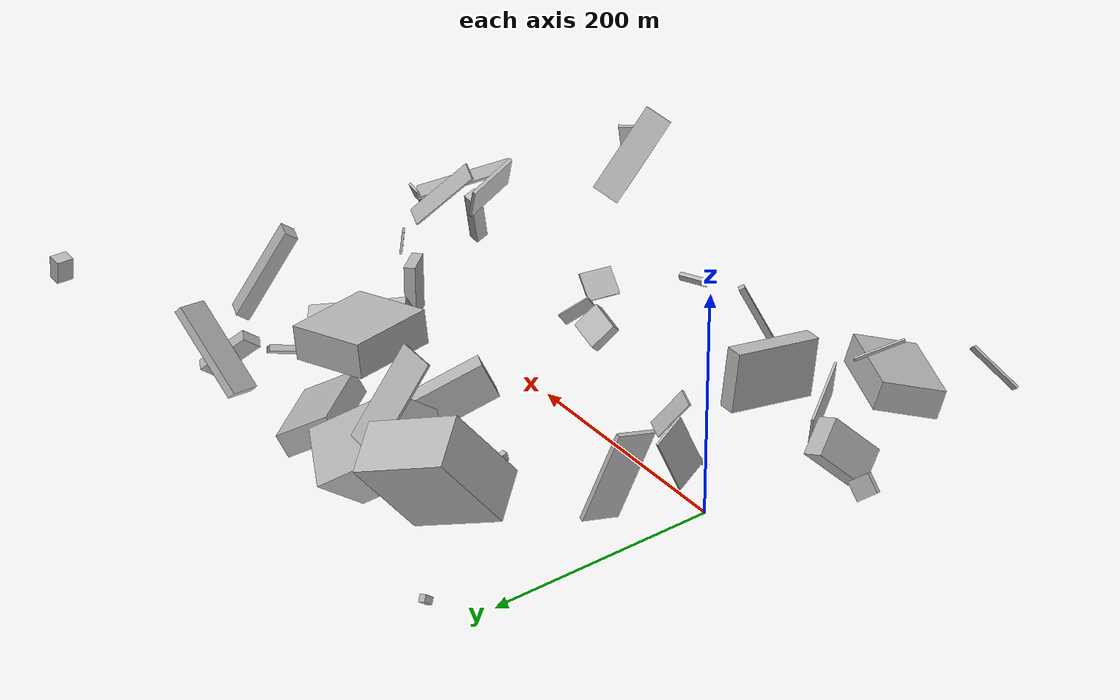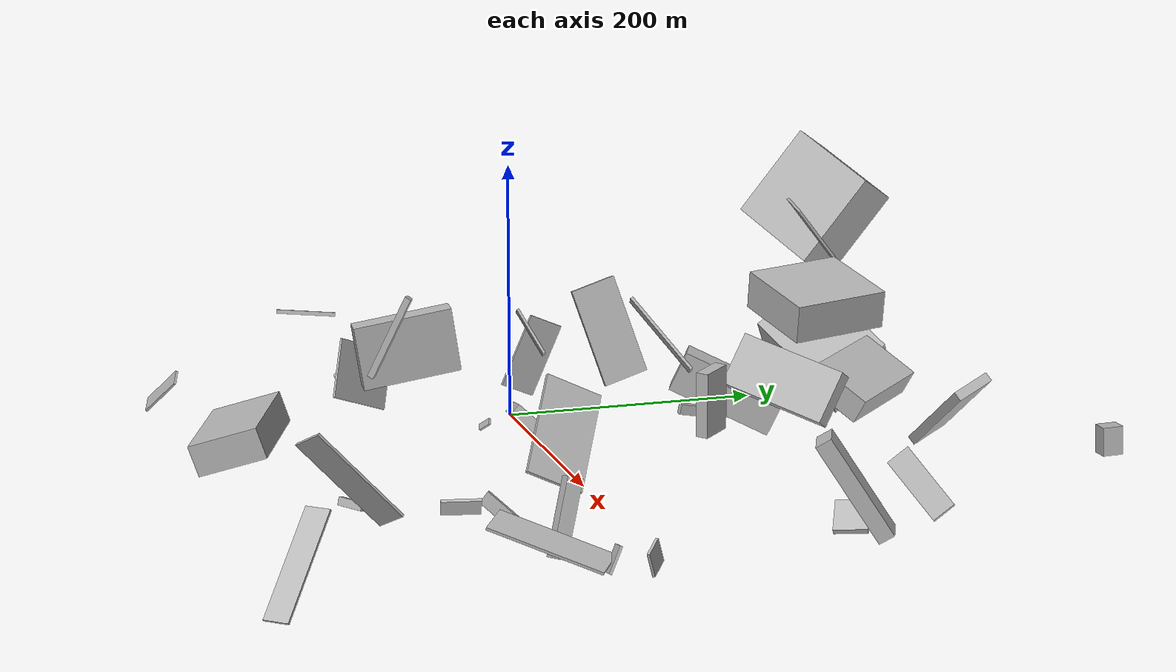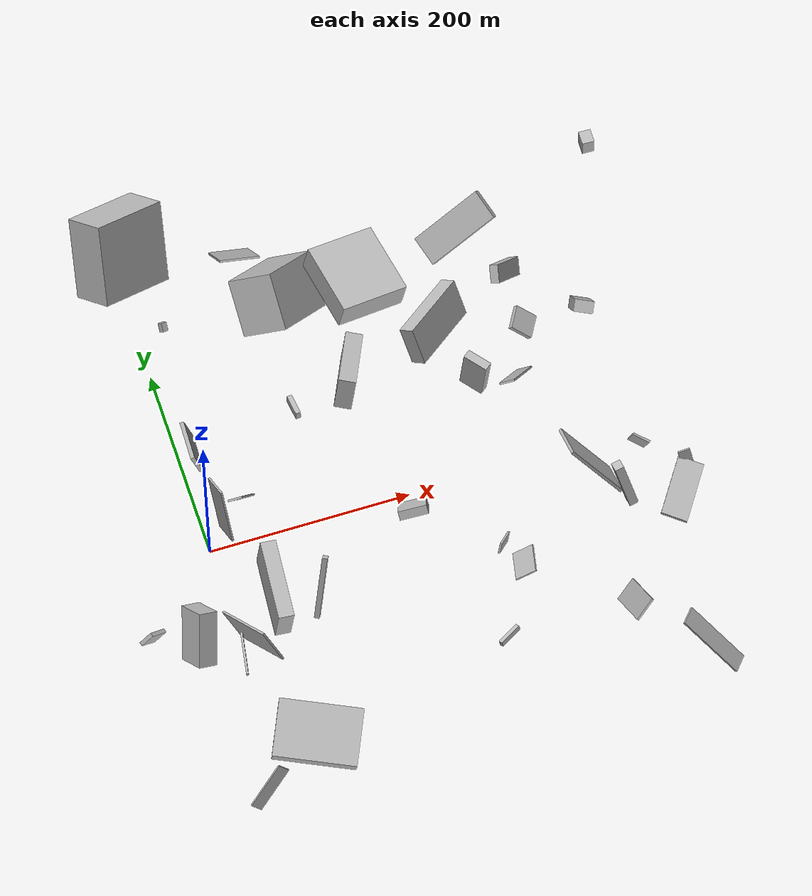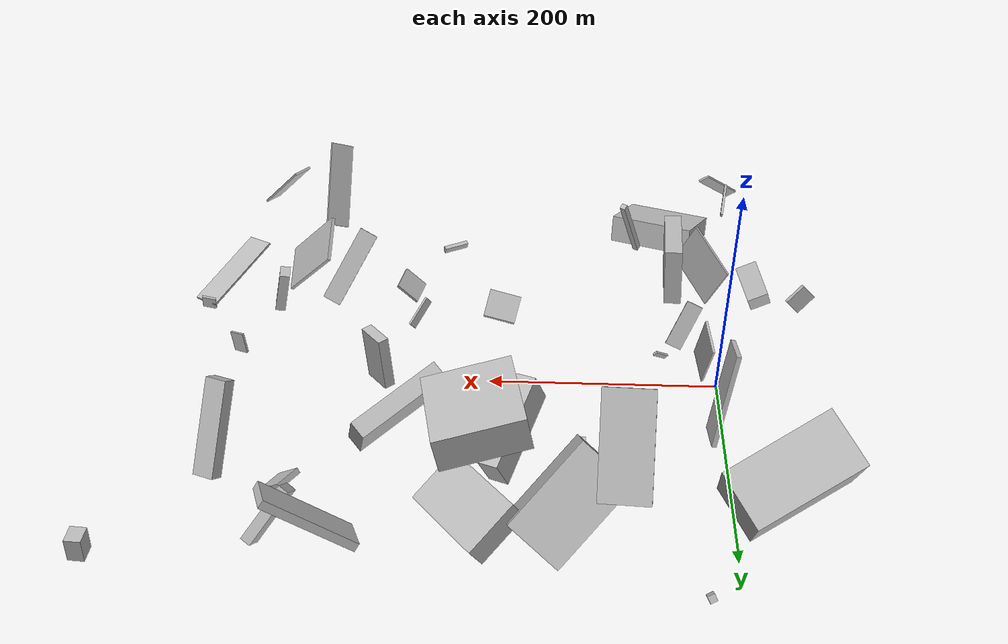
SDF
<sdf version="1.6">
 <world name="default">
  <scene>
   <sky><clouds><speed>12</speed></clouds></sky>
   <ambient>0.4 0.4 0.4 1</ambient>
   <background>0.7 0.7 0.7 1</background>
   <shadows>1</shadows>
  </scene>
  <gravity>0 0 -9.8066</gravity>
  <magnetic_field>6e-06 2.3e-05 -4.2e-05</magnetic_field>
  <physics default="0" name="default_physics" type="ode">
   <ode>
    <solver>
     <type>quick</type>
     <iters>10</iters>
     <sor>1.0</sor>
     <use_dynamic_moi_rescaling>0</use_dynamic_moi_rescaling>
    </solver>
    <constraints>
     <cfm>0</cfm>
     <erp>0.2</erp>
     <contact_max_correcting_vel>100</contact_max_correcting_vel>
     <contact_surface_layer>0.001</contact_surface_layer>
    </constraints>
   </ode>
   <max_step_size>0.004</max_step_size>
   <real_time_factor>1</real_time_factor>
   <real_time_update_rate>250</real_time_update_rate>
  </physics>
  <light name="sun" type="directional">
   <pose>0 0 10 0 0 0</pose>
   <diffuse>0.8 0.8 0.8 1</diffuse>
   <specular>0.2 0.2 0.2 1</specular>
   <attenuation>
    <range>1000</range>
    <constant>0.9</constant>
    <linear>0.01</linear>
    <quadratic>0.001</quadratic>
   </attenuation>
   <direction>-0.5 0.1 -0.9</direction>
  </light>
  <model name="building_1">
   <static>0</static>
   <pose>294.4453807189214 154.45991014234244 77.20308304561388 -1.1200591490920457 -1.020409278105367 1.8969526885437609</pose>
   <link name="link">
    <gravity>0</gravity>
    <pose>0 0 40.0 0 0 0</pose>
    <collision name="collision"><geometry><box><size>39 15 80</size></box></geometry></collision>
    <visual name="visual">
     <cast_shadows>0</cast_shadows>
     <geometry><box><size>39 15 80</size></box></geometry>
     <material>
      <script>
       <uri>model://HANNAS_wall/materials/scripts</uri>
       <uri>model://HANNAS_wall/materials/textures</uri>
       <name>vrc/HANNAS_wall</name>
      </script>
     </material>
    </visual>
   </link>
  </model>
  <model name="building_2">
   <static>0</static>
   <pose>-11.401880124403998 -159.5863640138179 90.38461801216162 -0.15950293910349927 0.08600053872945164 1.4010527220961295</pose>
   <link name="link">
    <gravity>0</gravity>
    <pose>0 0 1.5 0 0 0</pose>
    <collision name="collision"><geometry><box><size>45 2 3</size></box></geometry></collision>
    <visual name="visual">
     <cast_shadows>0</cast_shadows>
     <geometry><box><size>45 2 3</size></box></geometry>
     <material>
      <script>
       <uri>model://HANNAS_wall/materials/scripts</uri>
       <uri>model://HANNAS_wall/materials/textures</uri>
       <name>vrc/HANNAS_wall</name>
      </script>
     </material>
    </visual>
   </link>
  </model>
  <model name="building_3">
   <static>0</static>
   <pose>114.70099351908384 221.73372928154 142.72379098765032 1.4442625734164611 -0.9128960162092445 -1.5976103081515654</pose>
   <link name="link">
    <gravity>0</gravity>
    <pose>0 0 19.0 0 0 0</pose>
    <collision name="collision"><geometry><box><size>80 2 38</size></box></geometry></collision>
    <visual name="visual">
     <cast_shadows>0</cast_shadows>
     <geometry><box><size>80 2 38</size></box></geometry>
     <material>
      <script>
       <uri>model://HANNAS_wall/materials/scripts</uri>
       <uri>model://HANNAS_wall/materials/textures</uri>
       <name>vrc/HANNAS_wall</name>
      </script>
     </material>
    </visual>
   </link>
  </model>
  <model name="building_4">
   <static>0</static>
   <pose>424.22635695065145 -21.48473176961246 20.51723785798915 1.260410373988103 1.2270869016360613 2.1542366521095477</pose>
   <link name="link">
    <gravity>0</gravity>
    <pose>0 0 1.0 0 0 0</pose>
    <collision name="collision"><geometry><box><size>18 18 2</size></box></geometry></collision>
    <visual name="visual">
     <cast_shadows>0</cast_shadows>
     <geometry><box><size>18 18 2</size></box></geometry>
     <material>
      <script>
       <uri>model://HANNAS_wall/materials/scripts</uri>
       <uri>model://HANNAS_wall/materials/textures</uri>
       <name>vrc/HANNAS_wall</name>
      </script>
     </material>
    </visual>
   </link>
  </model>
  <model name="building_5">
   <static>0</static>
   <pose>171.9761827230846 113.14588795558419 42.15741549754327 -0.12134546416696623 -0.42938081543149353 -1.9652833209403975</pose>
   <link name="link">
    <gravity>0</gravity>
    <pose>0 0 16.0 0 0 0</pose>
    <collision name="collision"><geometry><box><size>80 17 32</size></box></geometry></collision>
    <visual name="visual">
     <cast_shadows>0</cast_shadows>
     <geometry><box><size>80 17 32</size></box></geometry>
     <material>
      <script>
       <uri>model://HANNAS_wall/materials/scripts</uri>
       <uri>model://HANNAS_wall/materials/textures</uri>
       <name>vrc/HANNAS_wall</name>
      </script>
     </material>
    </visual>
   </link>
  </model>
  <model name="building_6">
   <static>0</static>
   <pose>40.86290942051367 -54.883704738137816 77.98028878233062 -2.805572382942198 1.4039997030807687 1.8447870137020055</pose>
   <link name="link">
    <gravity>0</gravity>
    <pose>0 0 38.0 0 0 0</pose>
    <collision name="collision"><geometry><box><size>50 15 76</size></box></geometry></collision>
    <visual name="visual">
     <cast_shadows>0</cast_shadows>
     <geometry><box><size>50 15 76</size></box></geometry>
     <material>
      <script>
       <uri>model://HANNAS_wall/materials/scripts</uri>
       <uri>model://HANNAS_wall/materials/textures</uri>
       <name>vrc/HANNAS_wall</name>
      </script>
     </material>
    </visual>
   </link>
  </model>
  <model name="building_7">
   <static>0</static>
   <pose>-74.0572429427482 -84.46627359352725 26.420797041287727 0.31935658171534415 -0.831567579932505 0.03297080122207723</pose>
   <link name="link">
    <gravity>0</gravity>
    <pose>0 0 10.5 0 0 0</pose>
    <collision name="collision"><geometry><box><size>17 4 21</size></box></geometry></collision>
    <visual name="visual">
     <cast_shadows>0</cast_shadows>
     <geometry><box><size>17 4 21</size></box></geometry>
     <material>
      <script>
       <uri>model://HANNAS_wall/materials/scripts</uri>
       <uri>model://HANNAS_wall/materials/textures</uri>
       <name>vrc/HANNAS_wall</name>
      </script>
     </material>
    </visual>
   </link>
  </model>
  <model name="building_8">
   <static>0</static>
   <pose>412.3563673807903 -259.4368500369897 36.996466249222316 1.5619120361976266 0.7727949248807424 2.412552098723818</pose>
   <link name="link">
    <gravity>0</gravity>
    <pose>0 0 9.0 0 0 0</pose>
    <collision name="collision"><geometry><box><size>2 80 18</size></box></geometry></collision>
    <visual name="visual">
     <cast_shadows>0</cast_shadows>
     <geometry><box><size>2 80 18</size></box></geometry>
     <material>
      <script>
       <uri>model://HANNAS_wall/materials/scripts</uri>
       <uri>model://HANNAS_wall/materials/textures</uri>
       <name>vrc/HANNAS_wall</name>
      </script>
     </material>
    </visual>
   </link>
  </model>
  <model name="building_9">
   <static>0</static>
   <pose>-11.858347413983722 234.2158221421934 122.02548570001622 0.5309277082512971 -0.39405736108737116 -2.7350649088295</pose>
   <link name="link">
    <gravity>0</gravity>
    <pose>0 0 40.0 0 0 0</pose>
    <collision name="collision"><geometry><box><size>80 42 80</size></box></geometry></collision>
    <visual name="visual">
     <cast_shadows>0</cast_shadows>
     <geometry><box><size>80 42 80</size></box></geometry>
     <material>
      <script>
       <uri>model://HANNAS_wall/materials/scripts</uri>
       <uri>model://HANNAS_wall/materials/textures</uri>
       <name>vrc/HANNAS_wall</name>
      </script>
     </material>
    </visual>
   </link>
  </model>
  <model name="building_10">
   <static>0</static>
   <pose>-33.75129935737728 -83.3598108660143 55.72671610518738 2.4567848882110987 0.3979253088145151 0.12235387876201204</pose>
   <link name="link">
    <gravity>0</gravity>
    <pose>0 0 26.5 0 0 0</pose>
    <collision name="collision"><geometry><box><size>19 32 53</size></box></geometry></collision>
    <visual name="visual">
     <cast_shadows>0</cast_shadows>
     <geometry><box><size>19 32 53</size></box></geometry>
     <material>
      <script>
       <uri>model://HANNAS_wall/materials/scripts</uri>
       <uri>model://HANNAS_wall/materials/textures</uri>
       <name>vrc/HANNAS_wall</name>
      </script>
     </material>
    </visual>
   </link>
  </model>
  <model name="building_11">
   <static>0</static>
   <pose>17.450995279975718 13.212281870016644 51.873638426635026 1.5271647840788003 -0.4304544836010975 -1.3733088206336954</pose>
   <link name="link">
    <gravity>0</gravity>
    <pose>0 0 1.0 0 0 0</pose>
    <collision name="collision"><geometry><box><size>29 59 2</size></box></geometry></collision>
    <visual name="visual">
     <cast_shadows>0</cast_shadows>
     <geometry><box><size>29 59 2</size></box></geometry>
     <material>
      <script>
       <uri>model://HANNAS_wall/materials/scripts</uri>
       <uri>model://HANNAS_wall/materials/textures</uri>
       <name>vrc/HANNAS_wall</name>
      </script>
     </material>
    </visual>
   </link>
  </model>
  <model name="building_12">
   <static>0</static>
   <pose>358.2581469068101 186.5104527555825 25.788748957403634 0.5498327682503273 -0.7561119998443238 -2.479884100281518</pose>
   <link name="link">
    <gravity>0</gravity>
    <pose>0 0 9.0 0 0 0</pose>
    <collision name="collision"><geometry><box><size>51 9 18</size></box></geometry></collision>
    <visual name="visual">
     <cast_shadows>0</cast_shadows>
     <geometry><box><size>51 9 18</size></box></geometry>
     <material>
      <script>
       <uri>model://HANNAS_wall/materials/scripts</uri>
       <uri>model://HANNAS_wall/materials/textures</uri>
       <name>vrc/HANNAS_wall</name>
      </script>
     </material>
    </visual>
   </link>
  </model>
  <model name="building_13">
   <static>0</static>
   <pose>74.7569809633817 -112.3830147890181 90.22997043317412 1.5803468040517243 0.4599534199358597 1.0167679857245917</pose>
   <link name="link">
    <gravity>0</gravity>
    <pose>0 0 2.5 0 0 0</pose>
    <collision name="collision"><geometry><box><size>5 70 5</size></box></geometry></collision>
    <visual name="visual">
     <cast_shadows>0</cast_shadows>
     <geometry><box><size>5 70 5</size></box></geometry>
     <material>
      <script>
       <uri>model://HANNAS_wall/materials/scripts</uri>
       <uri>model://HANNAS_wall/materials/textures</uri>
       <name>vrc/HANNAS_wall</name>
      </script>
     </material>
    </visual>
   </link>
  </model>
  <model name="building_14">
   <static>0</static>
   <pose>459.78843690105566 -63.73635860839458 25.89473980441047 -0.20856588078145638 0.43168174150425603 1.439872051473615</pose>
   <link name="link">
    <gravity>0</gravity>
    <pose>0 0 9.5 0 0 0</pose>
    <collision name="collision"><geometry><box><size>2 12 19</size></box></geometry></collision>
    <visual name="visual">
     <cast_shadows>0</cast_shadows>
     <geometry><box><size>2 12 19</size></box></geometry>
     <material>
      <script>
       <uri>model://HANNAS_wall/materials/scripts</uri>
       <uri>model://HANNAS_wall/materials/textures</uri>
       <name>vrc/HANNAS_wall</name>
      </script>
     </material>
    </visual>
   </link>
  </model>
  <model name="building_15">
   <static>0</static>
   <pose>411.40052863587675 117.5820933410846 48.77979007932963 -0.18600792986621925 -0.9936585118943737 -1.8295803825838355</pose>
   <link name="link">
    <gravity>0</gravity>
    <pose>0 0 6.0 0 0 0</pose>
    <collision name="collision"><geometry><box><size>80 19 12</size></box></geometry></collision>
    <visual name="visual">
     <cast_shadows>0</cast_shadows>
     <geometry><box><size>80 19 12</size></box></geometry>
     <material>
      <script>
       <uri>model://HANNAS_wall/materials/scripts</uri>
       <uri>model://HANNAS_wall/materials/textures</uri>
       <name>vrc/HANNAS_wall</name>
      </script>
     </material>
    </visual>
   </link>
  </model>
  <model name="building_16">
   <static>0</static>
   <pose>134.3969177161401 189.14216373082434 57.143592129098344 0.6840409017833986 -0.610936607499759 -2.4793229912128423</pose>
   <link name="link">
    <gravity>0</gravity>
    <pose>0 0 28.0 0 0 0</pose>
    <collision name="collision"><geometry><box><size>80 48 56</size></box></geometry></collision>
    <visual name="visual">
     <cast_shadows>0</cast_shadows>
     <geometry><box><size>80 48 56</size></box></geometry>
     <material>
      <script>
       <uri>model://HANNAS_wall/materials/scripts</uri>
       <uri>model://HANNAS_wall/materials/textures</uri>
       <name>vrc/HANNAS_wall</name>
      </script>
     </material>
    </visual>
   </link>
  </model>
  <model name="building_17">
   <static>0</static>
   <pose>242.05479317128666 -181.77047679192927 16.6991977313724 3.0287650488025393 -1.2851719406618223 2.189229389821291</pose>
   <link name="link">
    <gravity>0</gravity>
    <pose>0 0 2.0 0 0 0</pose>
    <collision name="collision"><geometry><box><size>6 24 4</size></box></geometry></collision>
    <visual name="visual">
     <cast_shadows>0</cast_shadows>
     <geometry><box><size>6 24 4</size></box></geometry>
     <material>
      <script>
       <uri>model://HANNAS_wall/materials/scripts</uri>
       <uri>model://HANNAS_wall/materials/textures</uri>
       <name>vrc/HANNAS_wall</name>
      </script>
     </material>
    </visual>
   </link>
  </model>
  <model name="building_18">
   <static>0</static>
   <pose>325.6500102340305 217.01563764673756 66.59160983790568 -1.1623119628396388 -0.6513247261636151 0.08178178106079148</pose>
   <link name="link">
    <gravity>0</gravity>
    <pose>0 0 15.5 0 0 0</pose>
    <collision name="collision"><geometry><box><size>80 7 31</size></box></geometry></collision>
    <visual name="visual">
     <cast_shadows>0</cast_shadows>
     <geometry><box><size>80 7 31</size></box></geometry>
     <material>
      <script>
       <uri>model://HANNAS_wall/materials/scripts</uri>
       <uri>model://HANNAS_wall/materials/textures</uri>
       <name>vrc/HANNAS_wall</name>
      </script>
     </material>
    </visual>
   </link>
  </model>
  <model name="building_19">
   <static>0</static>
   <pose>356.5924140023402 -178.16877032752598 39.58664877969033 -0.5975885504891177 0.4683965171283847 -2.5905186506699036</pose>
   <link name="link">
    <gravity>0</gravity>
    <pose>0 0 40.0 0 0 0</pose>
    <collision name="collision"><geometry><box><size>24 2 80</size></box></geometry></collision>
    <visual name="visual">
     <cast_shadows>0</cast_shadows>
     <geometry><box><size>24 2 80</size></box></geometry>
     <material>
      <script>
       <uri>model://HANNAS_wall/materials/scripts</uri>
       <uri>model://HANNAS_wall/materials/textures</uri>
       <name>vrc/HANNAS_wall</name>
      </script>
     </material>
    </visual>
   </link>
  </model>
  <model name="building_20">
   <static>0</static>
   <pose>367.4214196384262 152.0589168320596 14.599041796619964 1.7181479754694633 -0.8925632014911556 -0.6442755438084864</pose>
   <link name="link">
    <gravity>0</gravity>
    <pose>0 0 12.0 0 0 0</pose>
    <collision name="collision"><geometry><box><size>5 25 24</size></box></geometry></collision>
    <visual name="visual">
     <cast_shadows>0</cast_shadows>
     <geometry><box><size>5 25 24</size></box></geometry>
     <material>
      <script>
       <uri>model://HANNAS_wall/materials/scripts</uri>
       <uri>model://HANNAS_wall/materials/textures</uri>
       <name>vrc/HANNAS_wall</name>
      </script>
     </material>
    </visual>
   </link>
  </model>
  <model name="building_21">
   <static>0</static>
   <pose>37.958847306672894 -225.9529826748852 26.14758529898042 3.0545641167293356 0.3063890576568477 -2.0083233192165126</pose>
   <link name="link">
    <gravity>0</gravity>
    <pose>0 0 12.5 0 0 0</pose>
    <collision name="collision"><geometry><box><size>55 80 25</size></box></geometry></collision>
    <visual name="visual">
     <cast_shadows>0</cast_shadows>
     <geometry><box><size>55 80 25</size></box></geometry>
     <material>
      <script>
       <uri>model://HANNAS_wall/materials/scripts</uri>
       <uri>model://HANNAS_wall/materials/textures</uri>
       <name>vrc/HANNAS_wall</name>
      </script>
     </material>
    </visual>
   </link>
  </model>
  <model name="building_22">
   <static>0</static>
   <pose>45.807434599066795 -32.851590559110434 10.063333615545593 -2.7629161460580316 0.5461430881814143 -2.724640392457725</pose>
   <link name="link">
    <gravity>0</gravity>
    <pose>0 0 2.5 0 0 0</pose>
    <collision name="collision"><geometry><box><size>14 2 5</size></box></geometry></collision>
    <visual name="visual">
     <cast_shadows>0</cast_shadows>
     <geometry><box><size>14 2 5</size></box></geometry>
     <material>
      <script>
       <uri>model://HANNAS_wall/materials/scripts</uri>
       <uri>model://HANNAS_wall/materials/textures</uri>
       <name>vrc/HANNAS_wall</name>
      </script>
     </material>
    </visual>
   </link>
  </model>
  <model name="building_23">
   <static>0</static>
   <pose>24.63713972458438 245.97211894607267 10.23929452437935 -0.7506853578298123 -0.36073338320592535 -2.8354679716508313</pose>
   <link name="link">
    <gravity>0</gravity>
    <pose>0 0 3.0 0 0 0</pose>
    <collision name="collision"><geometry><box><size>6 9 6</size></box></geometry></collision>
    <visual name="visual">
     <cast_shadows>0</cast_shadows>
     <geometry><box><size>6 9 6</size></box></geometry>
     <material>
      <script>
       <uri>model://HANNAS_wall/materials/scripts</uri>
       <uri>model://HANNAS_wall/materials/textures</uri>
       <name>vrc/HANNAS_wall</name>
      </script>
     </material>
    </visual>
   </link>
  </model>
  <model name="building_24">
   <static>0</static>
   <pose>470.388330623251 283.4227263055027 87.42341851204823 1.6079361974260957 -0.03246479734551323 -0.041373225177656237</pose>
   <link name="link">
    <gravity>0</gravity>
    <pose>0 0 7.0 0 0 0</pose>
    <collision name="collision"><geometry><box><size>12 19 14</size></box></geometry></collision>
    <visual name="visual">
     <cast_shadows>0</cast_shadows>
     <geometry><box><size>12 19 14</size></box></geometry>
     <material>
      <script>
       <uri>model://HANNAS_wall/materials/scripts</uri>
       <uri>model://HANNAS_wall/materials/textures</uri>
       <name>vrc/HANNAS_wall</name>
      </script>
     </material>
    </visual>
   </link>
  </model>
  <model name="building_25">
   <static>0</static>
   <pose>234.72960642850873 183.07378114577145 121.00302281310293 0.2664566386169044 -1.376887398377922 -0.0768247263606849</pose>
   <link name="link">
    <gravity>0</gravity>
    <pose>0 0 34.5 0 0 0</pose>
    <collision name="collision"><geometry><box><size>28 73 69</size></box></geometry></collision>
    <visual name="visual">
     <cast_shadows>0</cast_shadows>
     <geometry><box><size>28 73 69</size></box></geometry>
     <material>
      <script>
       <uri>model://HANNAS_wall/materials/scripts</uri>
       <uri>model://HANNAS_wall/materials/textures</uri>
       <name>vrc/HANNAS_wall</name>
      </script>
     </material>
    </visual>
   </link>
  </model>
  <model name="building_26">
   <static>0</static>
   <pose>8.027803409125486 62.23140874866505 59.311772343856894 0.5031391277091957 -1.2213306456619344 -2.09700136662236</pose>
   <link name="link">
    <gravity>0</gravity>
    <pose>0 0 18.0 0 0 0</pose>
    <collision name="collision"><geometry><box><size>80 4 36</size></box></geometry></collision>
    <visual name="visual">
     <cast_shadows>0</cast_shadows>
     <geometry><box><size>80 4 36</size></box></geometry>
     <material>
      <script>
       <uri>model://HANNAS_wall/materials/scripts</uri>
       <uri>model://HANNAS_wall/materials/textures</uri>
       <name>vrc/HANNAS_wall</name>
      </script>
     </material>
    </visual>
   </link>
  </model>
  <model name="building_27">
   <static>0</static>
   <pose>228.71928862791225 182.45229185250142 62.95004997718391 -1.4712115867800089 0.530674181302738 0.7168475518883778</pose>
   <link name="link">
    <gravity>0</gravity>
    <pose>0 0 37.0 0 0 0</pose>
    <collision name="collision"><geometry><box><size>46 20 74</size></box></geometry></collision>
    <visual name="visual">
     <cast_shadows>0</cast_shadows>
     <geometry><box><size>46 20 74</size></box></geometry>
     <material>
      <script>
       <uri>model://HANNAS_wall/materials/scripts</uri>
       <uri>model://HANNAS_wall/materials/textures</uri>
       <name>vrc/HANNAS_wall</name>
      </script>
     </material>
    </visual>
   </link>
  </model>
  <model name="building_28">
   <static>0</static>
   <pose>260.99571581298727 -90.91251467236715 19.01947942970896 -2.2011163478745064 -0.008475178548264559 -0.647519043479782</pose>
   <link name="link">
    <gravity>0</gravity>
    <pose>0 0 14.5 0 0 0</pose>
    <collision name="collision"><geometry><box><size>2 11 29</size></box></geometry></collision>
    <visual name="visual">
     <cast_shadows>0</cast_shadows>
     <geometry><box><size>2 11 29</size></box></geometry>
     <material>
      <script>
       <uri>model://HANNAS_wall/materials/scripts</uri>
       <uri>model://HANNAS_wall/materials/textures</uri>
       <name>vrc/HANNAS_wall</name>
      </script>
     </material>
    </visual>
   </link>
  </model>
  <model name="building_29">
   <static>0</static>
   <pose>-5.96618234284659 -97.76400468753081 34.40760024653789 0.41602728692938806 1.156824984334185 -0.5773128279855778</pose>
   <link name="link">
    <gravity>0</gravity>
    <pose>0 0 28.0 0 0 0</pose>
    <collision name="collision"><geometry><box><size>46 2 56</size></box></geometry></collision>
    <visual name="visual">
     <cast_shadows>0</cast_shadows>
     <geometry><box><size>46 2 56</size></box></geometry>
     <material>
      <script>
       <uri>model://HANNAS_wall/materials/scripts</uri>
       <uri>model://HANNAS_wall/materials/textures</uri>
       <name>vrc/HANNAS_wall</name>
      </script>
     </material>
    </visual>
   </link>
  </model>
  <model name="building_30">
   <static>0</static>
   <pose>325.98457876270305 36.86401209636184 115.88105683729098 0.5092538200003092 0.6145808716151203 -1.5289601142268558</pose>
   <link name="link">
    <gravity>0</gravity>
    <pose>0 0 31.5 0 0 0</pose>
    <collision name="collision"><geometry><box><size>2 15 63</size></box></geometry></collision>
    <visual name="visual">
     <cast_shadows>0</cast_shadows>
     <geometry><box><size>2 15 63</size></box></geometry>
     <material>
      <script>
       <uri>model://HANNAS_wall/materials/scripts</uri>
       <uri>model://HANNAS_wall/materials/textures</uri>
       <name>vrc/HANNAS_wall</name>
      </script>
     </material>
    </visual>
   </link>
  </model>
  <model name="building_31">
   <static>0</static>
   <pose>359.3838982010004 -44.015988671052675 80.17386360154467 1.0314724066292957 -0.546056726177914 0.29470299066334416</pose>
   <link name="link">
    <gravity>0</gravity>
    <pose>0 0 20.5 0 0 0</pose>
    <collision name="collision"><geometry><box><size>3 72 41</size></box></geometry></collision>
    <visual name="visual">
     <cast_shadows>0</cast_shadows>
     <geometry><box><size>3 72 41</size></box></geometry>
     <material>
      <script>
       <uri>model://HANNAS_wall/materials/scripts</uri>
       <uri>model://HANNAS_wall/materials/textures</uri>
       <name>vrc/HANNAS_wall</name>
      </script>
     </material>
    </visual>
   </link>
  </model>
  <model name="building_32">
   <static>0</static>
   <pose>-22.437771818318133 -271.7909690933926 35.95271740675943 -2.1891599294407875 -0.6538346926677394 0.5004291249274879</pose>
   <link name="link">
    <gravity>0</gravity>
    <pose>0 0 1.0 0 0 0</pose>
    <collision name="collision"><geometry><box><size>47 12 2</size></box></geometry></collision>
    <visual name="visual">
     <cast_shadows>0</cast_shadows>
     <geometry><box><size>47 12 2</size></box></geometry>
     <material>
      <script>
       <uri>model://HANNAS_wall/materials/scripts</uri>
       <uri>model://HANNAS_wall/materials/textures</uri>
       <name>vrc/HANNAS_wall</name>
      </script>
     </material>
    </visual>
   </link>
  </model>
  <model name="building_33">
   <static>0</static>
   <pose>421.30811123853954 -127.8855854393433 55.387769747157705 -2.6519049633324556 -1.2372899286040595 0.4921061509215547</pose>
   <link name="link">
    <gravity>0</gravity>
    <pose>0 0 40.0 0 0 0</pose>
    <collision name="collision"><geometry><box><size>2 26 80</size></box></geometry></collision>
    <visual name="visual">
     <cast_shadows>0</cast_shadows>
     <geometry><box><size>2 26 80</size></box></geometry>
     <material>
      <script>
       <uri>model://HANNAS_wall/materials/scripts</uri>
       <uri>model://HANNAS_wall/materials/textures</uri>
       <name>vrc/HANNAS_wall</name>
      </script>
     </material>
    </visual>
   </link>
  </model>
  <model name="building_34">
   <static>0</static>
   <pose>391.7600085142029 -66.46759225944946 40.77677684956897 1.2730474085321963 -0.19599167138631673 0.12035175236885515</pose>
   <link name="link">
    <gravity>0</gravity>
    <pose>0 0 5.5 0 0 0</pose>
    <collision name="collision"><geometry><box><size>9 54 11</size></box></geometry></collision>
    <visual name="visual">
     <cast_shadows>0</cast_shadows>
     <geometry><box><size>9 54 11</size></box></geometry>
     <material>
      <script>
       <uri>model://HANNAS_wall/materials/scripts</uri>
       <uri>model://HANNAS_wall/materials/textures</uri>
       <name>vrc/HANNAS_wall</name>
      </script>
     </material>
    </visual>
   </link>
  </model>
  <model name="building_35">
   <static>0</static>
   <pose>121.28071479417913 112.3010247144389 26.575189458996846 1.277772674828233 1.3653458555064466 -1.789174895466462</pose>
   <link name="link">
    <gravity>0</gravity>
    <pose>0 0 2.5 0 0 0</pose>
    <collision name="collision"><geometry><box><size>8 24 5</size></box></geometry></collision>
    <visual name="visual">
     <cast_shadows>0</cast_shadows>
     <geometry><box><size>8 24 5</size></box></geometry>
     <material>
      <script>
       <uri>model://HANNAS_wall/materials/scripts</uri>
       <uri>model://HANNAS_wall/materials/textures</uri>
       <name>vrc/HANNAS_wall</name>
      </script>
     </material>
    </visual>
   </link>
  </model>
  <model name="building_36">
   <static>0</static>
   <pose>192.91278243439547 -32.86608190135155 44.02777190845731 -0.8243420794563763 0.19586530878830583 3.0118235983589634</pose>
   <link name="link">
    <gravity>0</gravity>
    <pose>0 0 12.0 0 0 0</pose>
    <collision name="collision"><geometry><box><size>28 9 24</size></box></geometry></collision>
    <visual name="visual">
     <cast_shadows>0</cast_shadows>
     <geometry><box><size>28 9 24</size></box></geometry>
     <material>
      <script>
       <uri>model://HANNAS_wall/materials/scripts</uri>
       <uri>model://HANNAS_wall/materials/textures</uri>
       <name>vrc/HANNAS_wall</name>
      </script>
     </material>
    </visual>
   </link>
  </model>
  <model name="building_37">
   <static>0</static>
   <pose>285.0891195023333 66.66762491524183 58.669812488982444 -0.07246213718002313 -0.03306965649371403 -2.4542641546552586</pose>
   <link name="link">
    <gravity>0</gravity>
    <pose>0 0 23.5 0 0 0</pose>
    <collision name="collision"><geometry><box><size>9 25 47</size></box></geometry></collision>
    <visual name="visual">
     <cast_shadows>0</cast_shadows>
     <geometry><box><size>9 25 47</size></box></geometry>
     <material>
      <script>
       <uri>model://HANNAS_wall/materials/scripts</uri>
       <uri>model://HANNAS_wall/materials/textures</uri>
       <name>vrc/HANNAS_wall</name>
      </script>
     </material>
    </visual>
   </link>
  </model>
  <model name="building_38">
   <static>0</static>
   <pose>279.18838425315573 -112.2410903781661 18.198628193649853 -0.6899002468187115 -0.004626312628517399 1.3647141381837866</pose>
   <link name="link">
    <gravity>0</gravity>
    <pose>0 0 1.0 0 0 0</pose>
    <collision name="collision"><geometry><box><size>28 24 2</size></box></geometry></collision>
    <visual name="visual">
     <cast_shadows>0</cast_shadows>
     <geometry><box><size>28 24 2</size></box></geometry>
     <material>
      <script>
       <uri>model://HANNAS_wall/materials/scripts</uri>
       <uri>model://HANNAS_wall/materials/textures</uri>
       <name>vrc/HANNAS_wall</name>
      </script>
     </material>
    </visual>
   </link>
  </model>
  <model name="building_39">
   <static>0</static>
   <pose>43.91606412712758 15.28510569433824 59.22778792578334 0.5138325842168987 -0.379866494358205 -0.21914236374072688</pose>
   <link name="link">
    <gravity>0</gravity>
    <pose>0 0 20.0 0 0 0</pose>
    <collision name="collision"><geometry><box><size>14 2 40</size></box></geometry></collision>
    <visual name="visual">
     <cast_shadows>0</cast_shadows>
     <geometry><box><size>14 2 40</size></box></geometry>
     <material>
      <script>
       <uri>model://HANNAS_wall/materials/scripts</uri>
       <uri>model://HANNAS_wall/materials/textures</uri>
       <name>vrc/HANNAS_wall</name>
      </script>
     </material>
    </visual>
   </link>
  </model>
 </world>
</sdf>
